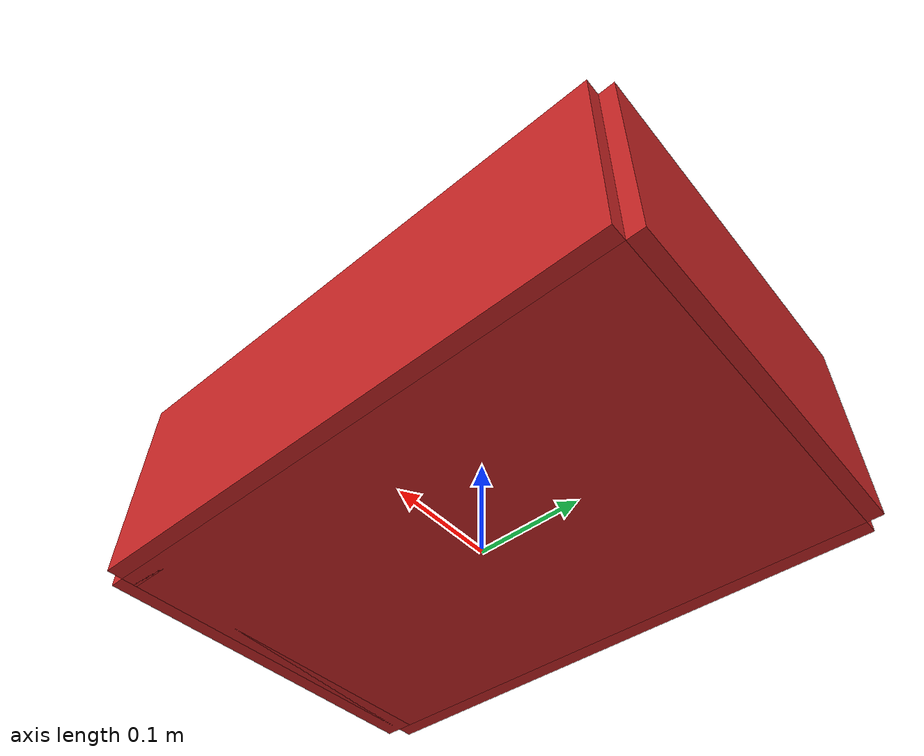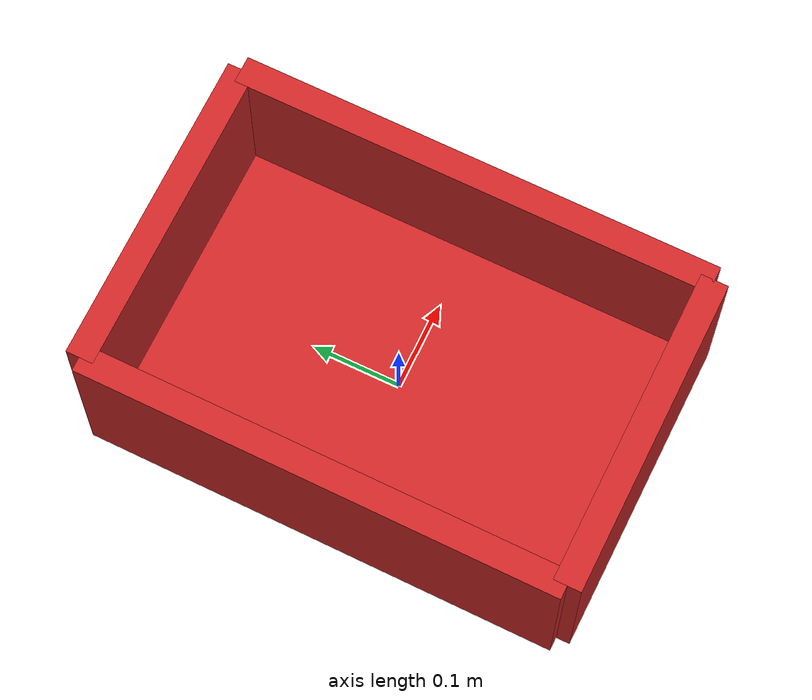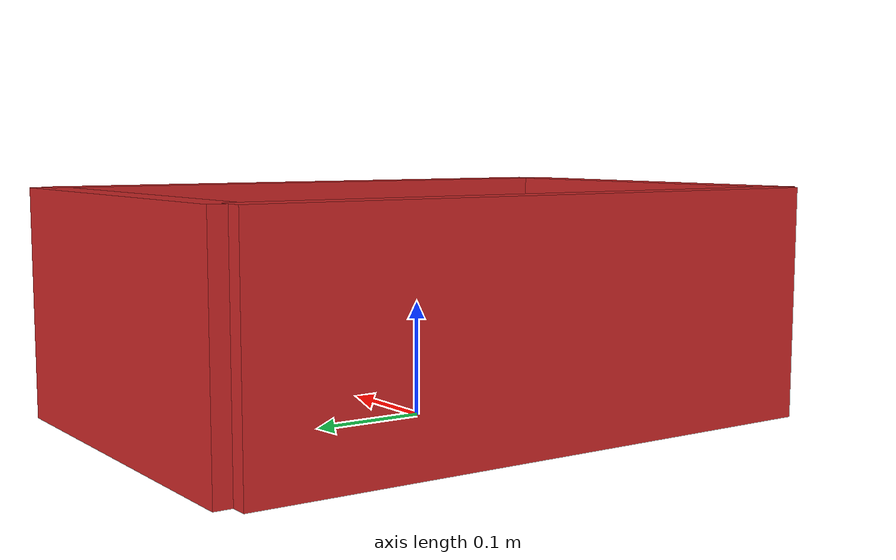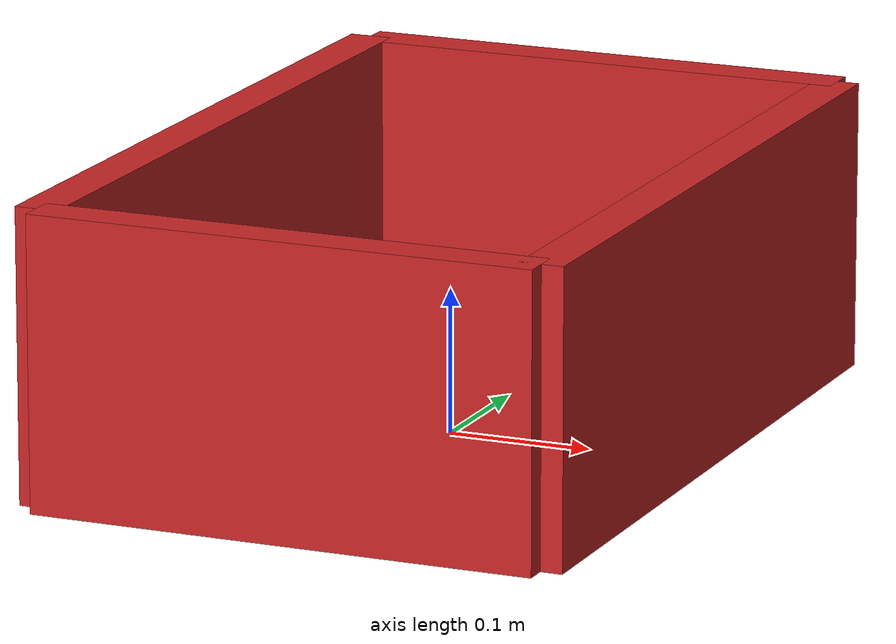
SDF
<!-- |    This file was autogenerated by gzsdf from order_bin.urdf                     | -->
<!-- |    EDITING THIS FILE BY HAND IS NOT RECOMMENDED                                 | -->
<sdf version='1.4'>
  <model name='order_bin'>
    <link name='order_bin_base'>
      <pose>0 0 0 0 -0 0</pose>
      <inertial>
        <pose>0 0 0.08 0 -0 0</pose>
        <mass>0.4</mass>
        <inertia>
          <ixx>0.012376</ixx>
          <ixy>0</ixy>
          <ixz>0</ixz>
          <iyy>0.00604</iyy>
          <iyz>0</iyz>
          <izz>0.016636</izz>
        </inertia>
      </inertial>
      <collision name='order_bin_base_collision'>
        <pose>0 0 0.1 0 -0 0</pose>
        <geometry>
          <box>
            <size>0.03 0.53 0.2</size>
          </box>
        </geometry>
        <surface>
          <contact>
            <ode/>
          </contact>
          <friction>
            <ode/>
          </friction>
        </surface>
      </collision>
      <collision name='order_bin_base_collision_order_bin_x_part0'>
        <pose>-0.175 0 0.1 0 -0 0</pose>
        <geometry>
          <box>
            <size>0.03 0.53 0.2</size>
          </box>
        </geometry>
        <surface>
          <contact>
            <ode/>
          </contact>
          <friction>
            <ode/>
          </friction>
        </surface>
        <surface>
          <contact>
            <ode/>
          </contact>
          <friction>
            <ode/>
          </friction>
        </surface>
      </collision>
      <collision name='order_bin_base_collision_order_bin_x_part1'>
        <pose>0.175 0 0.1 0 -0 0</pose>
        <geometry>
          <box>
            <size>0.03 0.53 0.2</size>
          </box>
        </geometry>
        <surface>
          <contact>
            <ode/>
          </contact>
          <friction>
            <ode/>
          </friction>
        </surface>
        <surface>
          <contact>
            <ode/>
          </contact>
          <friction>
            <ode/>
          </friction>
        </surface>
      </collision>
      <collision name='order_bin_base_collision_order_bin_y_part0'>
        <pose>0 -0.265 0.1 0 -0 0</pose>
        <geometry>
          <box>
            <size>0.35 0.03 0.2</size>
          </box>
        </geometry>
        <surface>
          <contact>
            <ode/>
          </contact>
          <friction>
            <ode/>
          </friction>
        </surface>
        <surface>
          <contact>
            <ode/>
          </contact>
          <friction>
            <ode/>
          </friction>
        </surface>
      </collision>
      <collision name='order_bin_base_collision_order_bin_y_part1'>
        <pose>0 0.265 0.1 0 -0 0</pose>
        <geometry>
          <box>
            <size>0.35 0.03 0.2</size>
          </box>
        </geometry>
        <surface>
          <contact>
            <ode/>
          </contact>
          <friction>
            <ode/>
          </friction>
        </surface>
        <surface>
          <contact>
            <ode/>
          </contact>
          <friction>
            <ode/>
          </friction>
        </surface>
      </collision>
      <visual name='order_bin_base_visual'>
        <pose>0 0 0.015 0 -0 0</pose>
        <geometry>
          <box>
            <size>0.35 0.53 0.03</size>
          </box>
        </geometry>
        <material>
          <script>
            <name>Gazebo/Red</name>
            <uri>__default__</uri>
          </script>
        </material>
      </visual>
      <visual name='order_bin_base_visual_order_bin_x_part0'>
        <pose>-0.175 0 0.1 0 -0 0</pose>
        <geometry>
          <box>
            <size>0.03 0.53 0.2</size>
          </box>
        </geometry>
        <material>
          <script>
            <name>Gazebo/Red</name>
            <uri>__default__</uri>
          </script>
        </material>
      </visual>
      <visual name='order_bin_base_visual_order_bin_x_part1'>
        <pose>0.175 0 0.1 0 -0 0</pose>
        <geometry>
          <box>
            <size>0.03 0.53 0.2</size>
          </box>
        </geometry>
        <material>
          <script>
            <name>Gazebo/Red</name>
            <uri>__default__</uri>
          </script>
        </material>
      </visual>
      <visual name='order_bin_base_visual_order_bin_y_part0'>
        <pose>0 -0.265 0.1 0 -0 0</pose>
        <geometry>
          <box>
            <size>0.35 0.03 0.2</size>
          </box>
        </geometry>
        <material>
          <script>
            <name>Gazebo/Red</name>
            <uri>__default__</uri>
          </script>
        </material>
      </visual>
      <visual name='order_bin_base_visual_order_bin_y_part1'>
        <pose>0 0.265 0.1 0 -0 0</pose>
        <geometry>
          <box>
            <size>0.35 0.03 0.2</size>
          </box>
        </geometry>
        <material>
          <script>
            <name>Gazebo/Red</name>
            <uri>__default__</uri>
          </script>
        </material>
      </visual>
      <velocity_decay>
        <linear>0</linear>
        <angular>0</angular>
      </velocity_decay>
      <velocity_decay>
        <linear>0</linear>
        <angular>0</angular>
      </velocity_decay>
      <velocity_decay>
        <linear>0</linear>
        <angular>0</angular>
      </velocity_decay>
      <velocity_decay>
        <linear>0</linear>
        <angular>0</angular>
      </velocity_decay>
      <gravity>1</gravity>
      <velocity_decay>
        <linear>0</linear>
        <angular>0</angular>
      </velocity_decay>
      <self_collide>0</self_collide>
    </link>
  </model>
</sdf>
